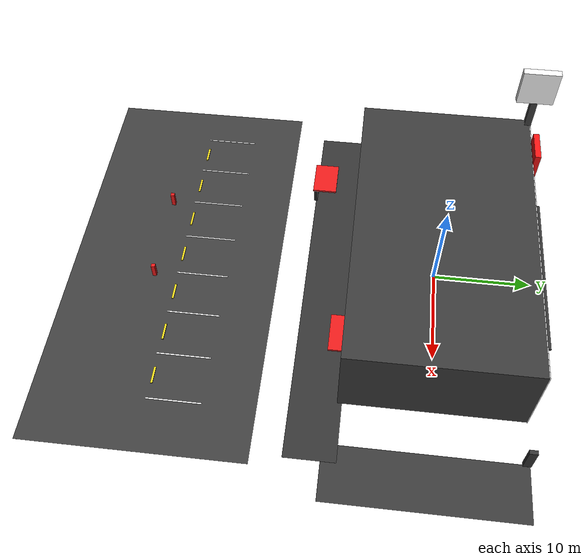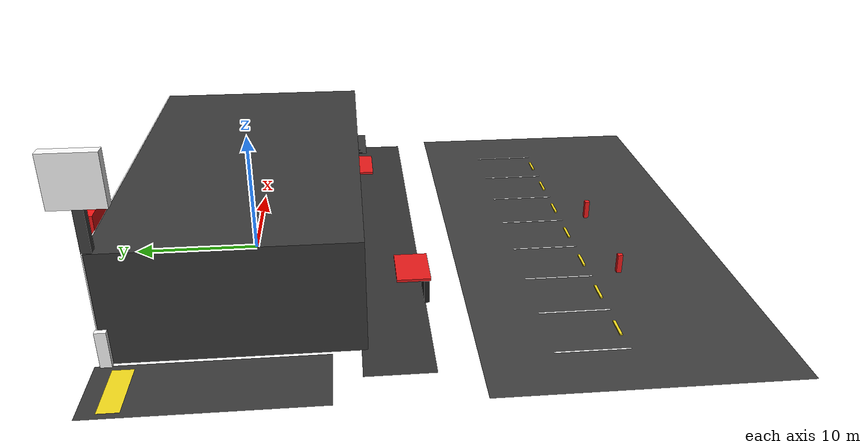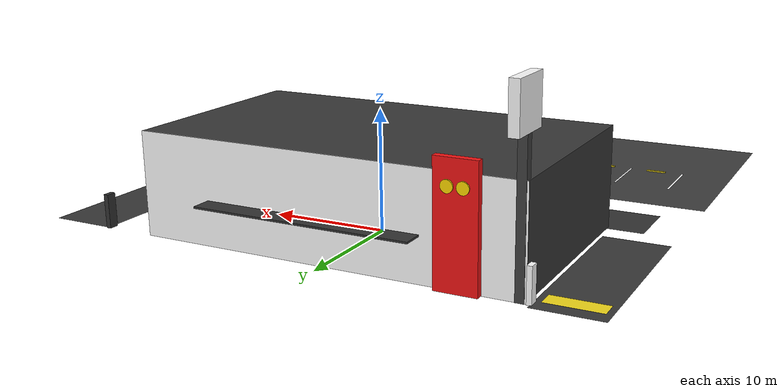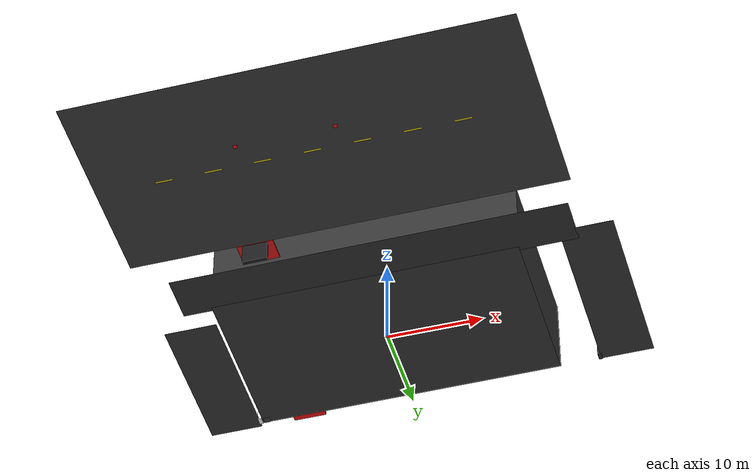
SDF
<?xml version="1.0" ?>
<sdf version="1.8">
  <model name="mcdonalds_building">
    <static>true</static>
    <link name="mcd_link">

      <!-- ==================== Collisions (High-Performance ODE) ==================== -->
      <!-- 2層樓主建物本體碰撞體 -->
      <collision name="mcd_main_col">
        <pose>0 0 4.25 0 0 0</pose>
        <geometry>
          <box><size>32.0 18.0 8.5</size></box>
        </geometry>
      </collision>

      <!-- 15米看板塔基座防撞柱 -->
      <collision name="mcd_tower_base_col">
        <pose>-15.5 8.7 1.5 0 0 0</pose>
        <geometry>
          <box><size>1.0 1.0 3.0</size></box>
        </geometry>
      </collision>

      <!-- ==================== 主建物外牆與高真實度實景貼圖 ==================== -->
      <!-- (A) 主建物暗灰/黑磚牆主體 -->
      <visual name="mcd_body_vis">
        <pose>0 0 4.25 0 0 0</pose>
        <geometry>
          <box><size>31.9 17.9 8.48</size></box>
        </geometry>
        <material>
          <ambient>0.18 0.18 0.18 1</ambient>
          <diffuse>0.22 0.22 0.22 1</diffuse>
          <pbr>
            <metal>
              <roughness>0.6</roughness>
              <metalness>0.1</metalness>
            </metal>
          </pbr>
        </material>
      </visual>

      <!-- (B) 臨關新路正面高解析度實景外牆 (Photo-Real Facade: McCafe, 落地大玻璃, 2F深色隔音窗) -->
      <visual name="mcd_facade_vis">
        <pose>0 8.96 4.25 0 0 0</pose>
        <geometry>
          <box><size>32.0 0.08 8.5</size></box>
        </geometry>
        <material>
          <diffuse>1 1 1 1</diffuse>
          <pbr>
            <metal>
              <albedo_map>model://mcdonalds_building/materials/textures/mcd_facade.png</albedo_map>
              <roughness>0.35</roughness>
              <metalness>0.15</metalness>
            </metal>
          </pbr>
        </material>
      </visual>

      <!-- (C) 標誌性立體刀鋒紅牆 (Iconic McDonald's Red Blade Wall) -->
      <visual name="mcd_red_blade_wall">
        <pose>-11.0 9.25 4.8 0 0 0</pose>
        <geometry>
          <box><size>3.4 0.6 9.6</size></box>
        </geometry>
        <material>
          <ambient>0.88 0.05 0.05 1</ambient>
          <diffuse>0.95 0.08 0.08 1</diffuse>
          <pbr>
            <metal>
              <roughness>0.3</roughness>
              <metalness>0.05</metalness>
            </metal>
          </pbr>
        </material>
      </visual>
      <!-- 紅牆上的立體金色雙拱門 'M' (Golden Arches on Red Wall) -->
      <visual name="mcd_wall_arch_l">
        <pose>-11.6 9.6 7.6 1.5707963 0 0</pose>
        <geometry>
          <cylinder><radius>0.48</radius><length>0.15</length></cylinder>
        </geometry>
        <material>
          <ambient>1.0 0.85 0.0 1</ambient>
          <diffuse>1.0 0.85 0.0 1</diffuse>
          <emissive>1.0 0.85 0.0 1</emissive>
        </material>
      </visual>
      <visual name="mcd_wall_arch_r">
        <pose>-10.4 9.6 7.6 1.5707963 0 0</pose>
        <geometry>
          <cylinder><radius>0.48</radius><length>0.15</length></cylinder>
        </geometry>
        <material>
          <ambient>1.0 0.85 0.0 1</ambient>
          <diffuse>1.0 0.85 0.0 1</diffuse>
          <emissive>1.0 0.85 0.0 1</emissive>
        </material>
      </visual>

      <!-- (D) 正面深灰金屬入店懸挑雨遮 (Entry Canopy) -->
      <visual name="mcd_entry_canopy">
        <pose>1.0 9.8 3.6 0 0 0</pose>
        <geometry>
          <box><size>18.0 1.8 0.15</size></box>
        </geometry>
        <material>
          <ambient>0.15 0.15 0.15 1</ambient>
          <diffuse>0.2 0.2 0.2 1</diffuse>
        </material>
      </visual>

      <!-- ==================== 15 米獨立超高看板塔 (Golden Arches Pylon Tower) ==================== -->
      <!-- 鋼骨支撐立柱 -->
      <visual name="mcd_tower_pole">
        <pose>-15.5 8.7 7.5 0 0 0</pose>
        <geometry>
          <box><size>0.7 0.7 15.0</size></box>
        </geometry>
        <material>
          <ambient>0.2 0.2 0.2 1</ambient>
          <diffuse>0.25 0.25 0.25 1</diffuse>
        </material>
      </visual>
      <!-- 頂部巨型發光標誌箱 (附金色雙拱門 & 得來速 DRIVE-THRU 貼圖) -->
      <visual name="mcd_tower_sign_box">
        <pose>-15.5 8.7 13.5 0 0 0</pose>
        <geometry>
          <box><size>0.8 3.8 3.8</size></box>
        </geometry>
        <material>
          <diffuse>1 1 1 1</diffuse>
          <emissive>0.8 0.8 0.8 1</emissive>
          <pbr>
            <metal>
              <albedo_map>model://mcdonalds_building/materials/textures/mcd_sign_tower.png</albedo_map>
              <roughness>0.2</roughness>
              <metalness>0.1</metalness>
            </metal>
          </pbr>
        </material>
      </visual>

      <!-- ==================== 得來速車道與設施 (Drive-Thru Lane & Facilities) ==================== -->
      <!-- 得來速入口車道瀝青路面 -->
      <visual name="mcd_dt_in_asphalt">
        <pose>-19.0 1.5 0.026 0 0 0</pose>
        <geometry>
          <box><size>5.5 16.0 0.002</size></box>
        </geometry>
        <material>
          <ambient>0.2 0.2 0.2 1</ambient>
          <diffuse>0.22 0.22 0.22 1</diffuse>
        </material>
      </visual>
      <!-- 入口黃色 "得來速" 車道標線 -->
      <visual name="mcd_dt_in_text">
        <pose>-19.0 7.5 0.03 0 0 0</pose>
        <geometry>
          <box><size>4.5 1.5 0.002</size></box>
        </geometry>
        <material>
          <ambient>0.9 0.8 0.1 1</ambient>
          <diffuse>0.95 0.85 0.1 1</diffuse>
        </material>
      </visual>
      <!-- 入口限高導引立柱 (Drive-Thru Entry Guidance Pylon) -->
      <visual name="mcd_dt_in_pylon">
        <pose>-16.2 8.7 1.4 0 0 0</pose>
        <geometry>
          <box><size>0.4 0.8 2.8</size></box>
        </geometry>
        <material>
          <diffuse>1 1 1 1</diffuse>
          <pbr>
            <metal>
              <albedo_map>model://mcdonalds_building/materials/textures/mcd_dt_pylon.png</albedo_map>
              <roughness>0.3</roughness>
            </metal>
          </pbr>
        </material>
      </visual>

      <!-- 得來速後側繞行車道 -->
      <visual name="mcd_dt_back_lane">
        <pose>1.5 -11.0 0.026 0 0 0</pose>
        <geometry>
          <box><size>41.0 5.0 0.002</size></box>
        </geometry>
        <material>
          <ambient>0.18 0.18 0.18 1</ambient>
          <diffuse>0.2 0.2 0.2 1</diffuse>
        </material>
      </visual>

      <!-- 點餐對講機與電子菜單螢幕 (Order Intercom & Digital Menu Board) -->
      <visual name="mcd_order_board">
        <pose>-10.0 -13.5 1.8 0 0 0</pose>
        <geometry>
          <box><size>2.6 0.4 2.2</size></box>
        </geometry>
        <material>
          <ambient>0.1 0.1 0.1 1</ambient>
          <diffuse>0.12 0.12 0.12 1</diffuse>
          <emissive>0.4 0.4 0.4 1</emissive>
        </material>
      </visual>
      <!-- 點餐區遮陽雨棚 (Ordering Canopy) -->
      <visual name="mcd_order_canopy">
        <pose>-10.0 -12.5 3.0 0 0 0</pose>
        <geometry>
          <box><size>3.8 2.5 0.2</size></box>
        </geometry>
        <material>
          <ambient>0.85 0.1 0.1 1</ambient>
          <diffuse>0.9 0.1 0.1 1</diffuse>
        </material>
      </visual>

      <!-- 取餐窗口雨棚 (Pickup Window Canopy) -->
      <visual name="mcd_pickup_canopy">
        <pose>10.0 -9.5 3.0 0 0 0</pose>
        <geometry>
          <box><size>4.0 1.6 0.2</size></box>
        </geometry>
        <material>
          <ambient>0.85 0.1 0.1 1</ambient>
          <diffuse>0.9 0.1 0.1 1</diffuse>
        </material>
      </visual>

      <!-- 得來速出口車道瀝青與標線 -->
      <visual name="mcd_dt_out_asphalt">
        <pose>23.0 -0.5 0.026 0 0 0</pose>
        <geometry>
          <box><size>5.5 19.0 0.002</size></box>
        </geometry>
        <material>
          <ambient>0.2 0.2 0.2 1</ambient>
          <diffuse>0.22 0.22 0.22 1</diffuse>
        </material>
      </visual>
      <visual name="mcd_dt_out_pylon">
        <pose>20.2 8.7 1.4 0 0 0</pose>
        <geometry>
          <box><size>0.4 0.8 2.8</size></box>
        </geometry>
        <material>
          <ambient>0.15 0.15 0.15 1</ambient>
          <diffuse>0.2 0.2 0.2 1</diffuse>
        </material>
      </visual>

      <!-- ==================== 顧客停車場 (8車位 + 特斯拉充電樁) ==================== -->
      <visual name="mcd_parking_surface">
        <pose>0.5 -27.5 0.026 0 0 0</pose>
        <geometry>
          <box><size>45.0 22.0 0.002</size></box>
        </geometry>
        <material>
          <ambient>0.22 0.22 0.22 1</ambient>
          <diffuse>0.24 0.24 0.24 1</diffuse>
        </material>
      </visual>

      <!-- 停車格線與黃色擋輪桿 -->
      <visual name="mcd_ps_0"><pose>-17.5 -24.5 0.03 0 0 0</pose><geometry><box><size>0.15 5.5 0.002</size></box></geometry><material><ambient>0.95 0.95 0.95 1</ambient><diffuse>1 1 1 1</diffuse></material></visual>
      <visual name="mcd_ws_0"><pose>-15.0 -27.0 0.08 0 0 0</pose><geometry><box><size>1.8 0.2 0.12</size></box></geometry><material><ambient>0.9 0.8 0.1 1</ambient><diffuse>0.95 0.85 0.1 1</diffuse></material></visual>

      <visual name="mcd_ps_1"><pose>-12.5 -24.5 0.03 0 0 0</pose><geometry><box><size>0.15 5.5 0.002</size></box></geometry><material><ambient>0.95 0.95 0.95 1</ambient><diffuse>1 1 1 1</diffuse></material></visual>
      <visual name="mcd_ws_1"><pose>-10.0 -27.0 0.08 0 0 0</pose><geometry><box><size>1.8 0.2 0.12</size></box></geometry><material><ambient>0.9 0.8 0.1 1</ambient><diffuse>0.95 0.85 0.1 1</diffuse></material></visual>

      <visual name="mcd_ps_2"><pose>-7.5 -24.5 0.03 0 0 0</pose><geometry><box><size>0.15 5.5 0.002</size></box></geometry><material><ambient>0.95 0.95 0.95 1</ambient><diffuse>1 1 1 1</diffuse></material></visual>
      <visual name="mcd_ws_2"><pose>-5.0 -27.0 0.08 0 0 0</pose><geometry><box><size>1.8 0.2 0.12</size></box></geometry><material><ambient>0.9 0.8 0.1 1</ambient><diffuse>0.95 0.85 0.1 1</diffuse></material></visual>

      <visual name="mcd_ps_3"><pose>-2.5 -24.5 0.03 0 0 0</pose><geometry><box><size>0.15 5.5 0.002</size></box></geometry><material><ambient>0.95 0.95 0.95 1</ambient><diffuse>1 1 1 1</diffuse></material></visual>
      <visual name="mcd_ws_3"><pose>0.0 -27.0 0.08 0 0 0</pose><geometry><box><size>1.8 0.2 0.12</size></box></geometry><material><ambient>0.9 0.8 0.1 1</ambient><diffuse>0.95 0.85 0.1 1</diffuse></material></visual>

      <visual name="mcd_ps_4"><pose>2.5 -24.5 0.03 0 0 0</pose><geometry><box><size>0.15 5.5 0.002</size></box></geometry><material><ambient>0.95 0.95 0.95 1</ambient><diffuse>1 1 1 1</diffuse></material></visual>
      <visual name="mcd_ws_4"><pose>5.0 -27.0 0.08 0 0 0</pose><geometry><box><size>1.8 0.2 0.12</size></box></geometry><material><ambient>0.9 0.8 0.1 1</ambient><diffuse>0.95 0.85 0.1 1</diffuse></material></visual>

      <visual name="mcd_ps_5"><pose>7.5 -24.5 0.03 0 0 0</pose><geometry><box><size>0.15 5.5 0.002</size></box></geometry><material><ambient>0.95 0.95 0.95 1</ambient><diffuse>1 1 1 1</diffuse></material></visual>
      <visual name="mcd_ws_5"><pose>10.0 -27.0 0.08 0 0 0</pose><geometry><box><size>1.8 0.2 0.12</size></box></geometry><material><ambient>0.9 0.8 0.1 1</ambient><diffuse>0.95 0.85 0.1 1</diffuse></material></visual>

      <visual name="mcd_ps_6"><pose>12.5 -24.5 0.03 0 0 0</pose><geometry><box><size>0.15 5.5 0.002</size></box></geometry><material><ambient>0.95 0.95 0.95 1</ambient><diffuse>1 1 1 1</diffuse></material></visual>
      <visual name="mcd_ws_6"><pose>15.0 -27.0 0.08 0 0 0</pose><geometry><box><size>1.8 0.2 0.12</size></box></geometry><material><ambient>0.9 0.8 0.1 1</ambient><diffuse>0.95 0.85 0.1 1</diffuse></material></visual>

      <visual name="mcd_ps_7"><pose>17.5 -24.5 0.03 0 0 0</pose><geometry><box><size>0.15 5.5 0.002</size></box></geometry><material><ambient>0.95 0.95 0.95 1</ambient><diffuse>1 1 1 1</diffuse></material></visual>

      <!-- 特斯拉充電樁 (Tesla Destination Chargers) -->
      <visual name="tesla_charger_1">
        <pose>-7.0 -29.5 0.8 0 0 0</pose>
        <geometry><box><size>0.4 0.4 1.6</size></box></geometry>
        <material><ambient>0.9 0.1 0.1 1</ambient><diffuse>0.95 0.1 0.1 1</diffuse></material>
      </visual>
      <visual name="tesla_charger_2">
        <pose>3.0 -29.5 0.8 0 0 0</pose>
        <geometry><box><size>0.4 0.4 1.6</size></box></geometry>
        <material><ambient>0.9 0.1 0.1 1</ambient><diffuse>0.95 0.1 0.1 1</diffuse></material>
      </visual>

    </link>
  </model>
</sdf>
